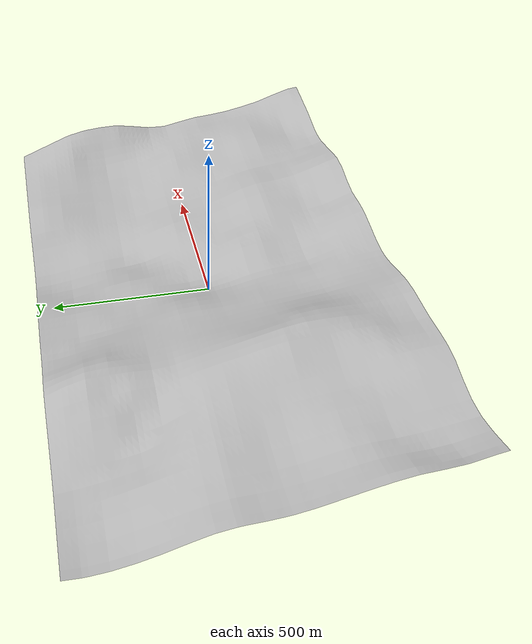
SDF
<?xml version="1.0" ?>
<sdf version="1.4">
  <model name="l5">
	<static>true</static>
	<link name="link">
	  <pose>0 0 -10.4 0 0 0</pose>
	    <collision name="my_collision">
		<geometry>
                   <mesh><uri>model://l5/untitled.dae</uri></mesh>
		 </geometry>
	    </collision>

	    <visual name="my_visual">
		<geometry>
                   <mesh><uri>model://l5/untitled.dae</uri></mesh>
		 </geometry>
	    </visual>
	</link>
</model>
</sdf>
